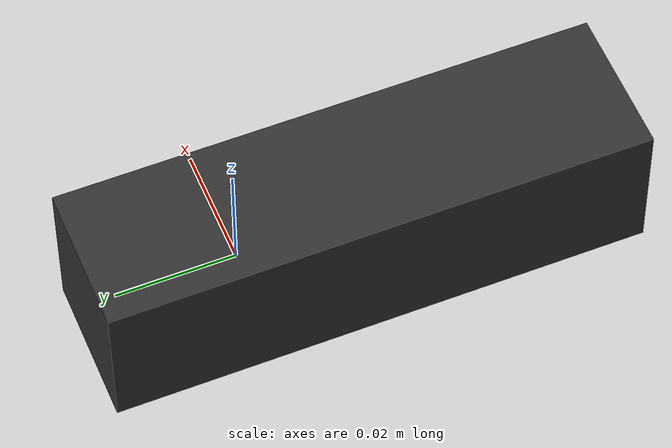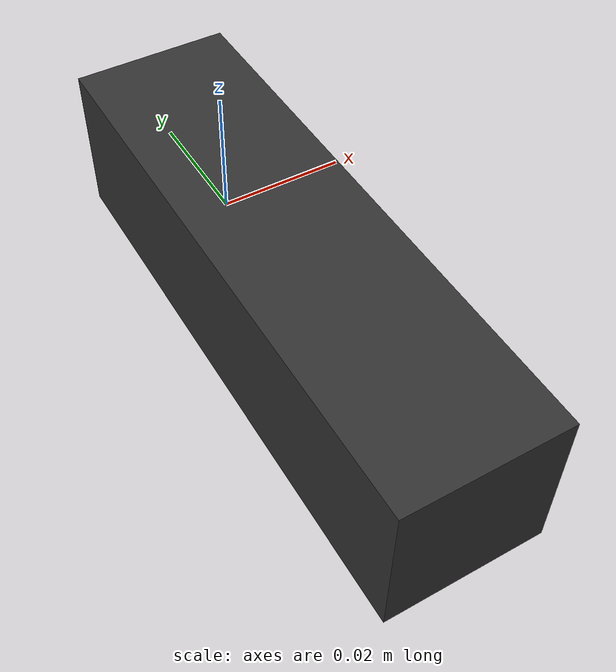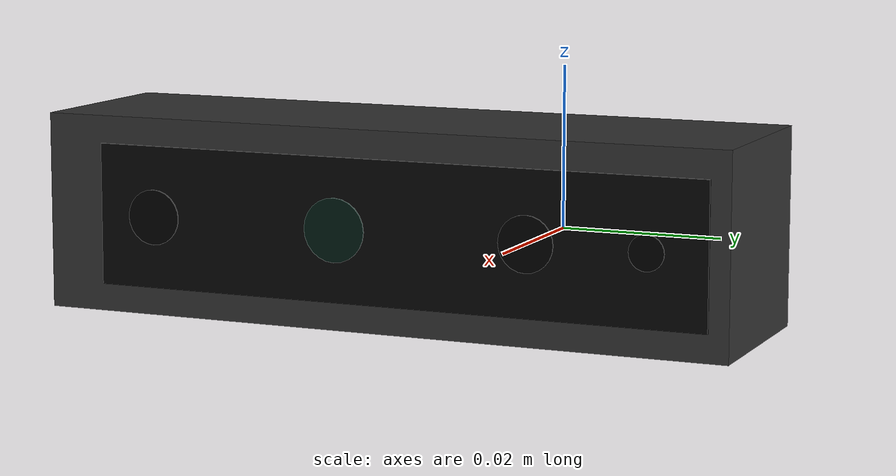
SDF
<?xml version="1.0"?>
<sdf version="1.10">
    <model name="mock_realsense">
        <pose>0 0 0 0 0 0</pose>
        <self_collide>false</self_collide>
        <static>false</static>
        <link name="camera_link">
            <pose>0 0 0 0 0 0</pose>
            <inertial>
                <pose>0 -0.020 0 0 0 0</pose>
                <mass>0.056</mass>
                <inertia>
                    <ixx>4.072e-5</ixx>
                    <ixy>0</ixy>
                    <ixz>0</ixz>
                    <iyy>5.833e-6</iyy>
                    <iyz>0</iyz>
                    <izz>4.072e-5</izz>
                </inertia>
            </inertial>
            <collision name="housing_collision">
                <pose>0 -0.020 0 0 0 0</pose>
                <geometry>
                    <box>
                        <size>0.025 0.090 0.025</size>
                    </box>
                </geometry>
                <surface>
                    <friction>
                        <ode>
                            <mu>0.8</mu>
                            <mu2>0.8</mu2>
                        </ode>
                    </friction>
                </surface>
            </collision>
            <visual name="housing">
                <pose>0 -0.020 0 0 0 0</pose>
                <geometry>
                    <box>
                        <size>0.025 0.090 0.025</size>
                    </box>
                </geometry>
                <material>
                    <diffuse>0.2 0.2 0.2 1</diffuse>
                </material>
            </visual>
            <visual name="lens_panel">
                <pose>0.01255 -0.0175 0 0 0 0</pose>
                <geometry>
                    <box>
                        <size>0.0005 0.080 0.018</size>
                    </box>
                </geometry>
                <material>
                    <ambient>0.02 0.02 0.02 1</ambient>
                    <diffuse>0.03 0.03 0.03 1</diffuse>
                    <specular>0.4 0.4 0.4 1</specular>
                </material>
            </visual>

            <visual name="hole_right_ir">
                <pose>0.01285 -0.050 0 0 1.5708 0</pose>
                <geometry>
                    <cylinder>
                        <radius>0.0035</radius>
                        <length>0.0002</length>
                    </cylinder>
                </geometry>
                <material>
                    <ambient>0.0 0.0 0.0 1</ambient>
                    <diffuse>0.0 0.0 0.0 1</diffuse>
                    <specular>0.6 0.6 0.6 1</specular>
                </material>
            </visual>

            <visual name="hole_ir_projector">
                <pose>0.01285 -0.025 0 0 1.5708 0</pose>
                <geometry>
                    <cylinder>
                        <radius>0.0040</radius>
                        <length>0.0002</length>
                    </cylinder>
                </geometry>
                <material>
                    <ambient>0.0 0.05 0.04 1</ambient>
                    <diffuse>0.0 0.10 0.07 1</diffuse>
                    <specular>0.3 0.6 0.5 1</specular>
                </material>
            </visual>

            <visual name="hole_left_ir">
                <pose>0.01285 0 0 0 1.5708 0</pose>
                <geometry>
                    <cylinder>
                        <radius>0.0035</radius>
                        <length>0.0002</length>
                    </cylinder>
                </geometry>
                <material>
                    <ambient>0.0 0.0 0.0 1</ambient>
                    <diffuse>0.0 0.0 0.0 1</diffuse>
                    <specular>0.6 0.6 0.6 1</specular>
                </material>
            </visual>

            <visual name="hole_color">
                <pose>0.01285 0.015 0 0 1.5708 0</pose>
                <geometry>
                    <cylinder>
                        <radius>0.0022</radius>
                        <length>0.0002</length>
                    </cylinder>
                </geometry>
                <material>
                    <ambient>0.0 0.0 0.0 1</ambient>
                    <diffuse>0.0 0.0 0.0 1</diffuse>
                    <specular>0.7 0.7 0.7 1</specular>
                </material>
            </visual>

            <sensor name="depth_camera" type="depth_camera">
                <gz_frame_id>camera_link</gz_frame_id>
                <pose>0 0 0 0 0 0</pose>
                <camera>
                    <horizontal_fov>1.5184</horizontal_fov>
                    <image>
                        <width>640</width>
                        <height>480</height>
                        <format>R_FLOAT32</format>
                    </image>
                    <clip>
                        <near>0.2</near>
                        <far>19.1</far>
                    </clip>
                </camera>
                <always_on>1</always_on>
                <update_rate>30</update_rate>
                <visualize>true</visualize>
                <topic>depth_camera</topic>
            </sensor>

            <sensor name="color_camera" type="camera">
                <gz_frame_id>camera_link</gz_frame_id>
                <pose>0 0.015 0 0 0 0</pose>
                <camera>
                    <horizontal_fov>1.20428</horizontal_fov>
                    <image>
                        <width>1280</width>
                        <height>720</height>
                    </image>
                    <clip>
                        <near>0.1</near>
                        <far>100</far>
                    </clip>
                </camera>
                <always_on>1</always_on>
                <update_rate>30</update_rate>
                <visualize>true</visualize>
                <topic>color_camera</topic>
            </sensor>
            <gravity>true</gravity>
            <velocity_decay />
        </link>
    </model>
</sdf>
